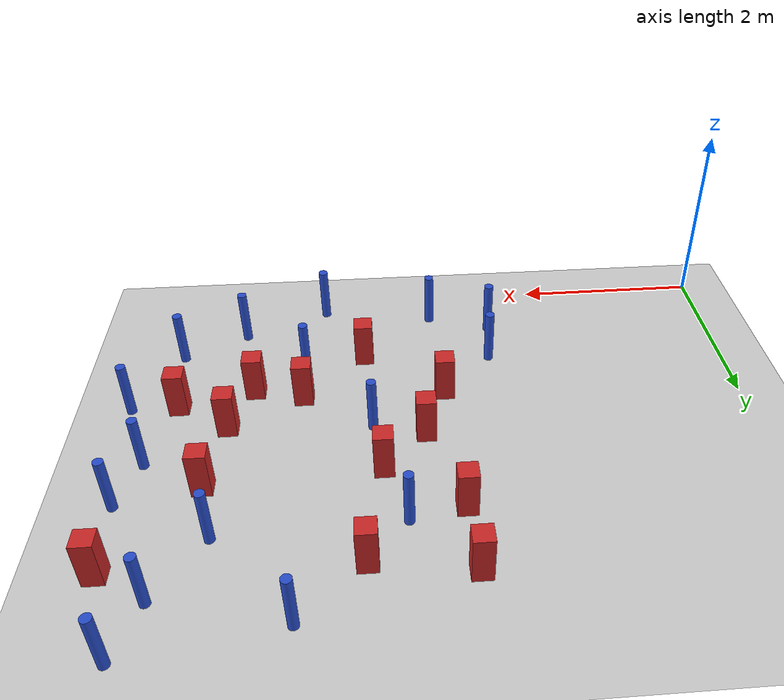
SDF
<sdf version="1.6">
 <world name="default">
  <model name="ground_plane">
   <static>1</static>
   <link name="link">
    <collision name="collision">
     <geometry><plane><normal>0 0 1</normal><size>100 100</size></plane></geometry>
     <surface><friction><ode><mu>100</mu><mu2>50</mu2></ode></friction></surface>
    </collision>
    <visual name="visual">
     <cast_shadows>0</cast_shadows>
     <geometry><plane><normal>0 0 1</normal><size>100 100</size></plane></geometry>
     <material>
      <ambient>1.0 1.0 1.0 1.0</ambient>
      <diffuse>0.8 0.8 0.8 1.0</diffuse>
      <specular>0.01 0.01 0.01 1.000000</specular>
     </material>
    </visual>
   </link>
  </model>
  <model name="square_post_obstacle2">
   <static>true</static>
   <pose>3.41418709103 2.44954421194 8.22691968438e-08 7.2212513382e-06 -7.54495500217e-07 2.29674213826e-05</pose>
   <link name="link">
    <pose>0 0 0.25 0 -0 0</pose>
    <inertial>
     <mass>100</mass>
     <inertia>
      <ixx>0.166667</ixx>
      <ixy>0</ixy>
      <ixz>0</ixz>
      <iyy>0.166667</iyy>
      <iyz>0</iyz>
      <izz>0.166667</izz>
     </inertia>
    </inertial>
    <collision name="collision"><geometry><box><size>.2 .2 .5</size></box></geometry></collision>
    <visual name="visual">
     <geometry><box><size>.2 .2 .5</size></box></geometry>
     <material>
      <script><name>Gazebo/Red</name><uri>file://media/materials/scripts/gazebo.material</uri></script>
     </material>
    </visual>
   </link>
  </model>
  <model name="square_post_obstacle8">
   <static>true</static>
   <pose>4.02171252029 1.15391218855 8.22691968438e-08 7.2212513382e-06 -7.54495500217e-07 2.29674213826e-05</pose>
   <link name="link">
    <pose>0 0 0.25 0 -0 0</pose>
    <inertial>
     <mass>100</mass>
     <inertia>
      <ixx>0.166667</ixx>
      <ixy>0</ixy>
      <ixz>0</ixz>
      <iyy>0.166667</iyy>
      <iyz>0</iyz>
      <izz>0.166667</izz>
     </inertia>
    </inertial>
    <collision name="collision"><geometry><box><size>.2 .2 .5</size></box></geometry></collision>
    <visual name="visual">
     <geometry><box><size>.2 .2 .5</size></box></geometry>
     <material>
      <script><name>Gazebo/Red</name><uri>file://media/materials/scripts/gazebo.material</uri></script>
     </material>
    </visual>
   </link>
  </model>
  <model name="square_post_obstacle11">
   <static>true</static>
   <pose>3.17586104604 1.81544225425 8.22691968438e-08 7.2212513382e-06 -7.54495500217e-07 2.29674213826e-05</pose>
   <link name="link">
    <pose>0 0 0.25 0 -0 0</pose>
    <inertial>
     <mass>100</mass>
     <inertia>
      <ixx>0.166667</ixx>
      <ixy>0</ixy>
      <ixz>0</ixz>
      <iyy>0.166667</iyy>
      <iyz>0</iyz>
      <izz>0.166667</izz>
     </inertia>
    </inertial>
    <collision name="collision"><geometry><box><size>.2 .2 .5</size></box></geometry></collision>
    <visual name="visual">
     <geometry><box><size>.2 .2 .5</size></box></geometry>
     <material>
      <script><name>Gazebo/Red</name><uri>file://media/materials/scripts/gazebo.material</uri></script>
     </material>
    </visual>
   </link>
  </model>
  <model name="pole_obstacle9">
   <static>true</static>
   <pose>3.24602878182 0.450953983572 2.88873142074e-08 -9.90536689151e-09 4.60219949006e-07 -1.20965994951e-07</pose>
   <link name="link">
    <pose>0 0 0.3 0 -0 0</pose>
    <inertial>
     <mass>1</mass>
     <inertia><ixx>0.145833</ixx><ixy>0</ixy><ixz>0</ixz><iyy>0.145833</iyy><iyz>0</iyz><izz>0.125</izz></inertia>
    </inertial>
    <collision name="collision">
     <geometry><cylinder><radius>0.05</radius><length>.6</length></cylinder></geometry>
    </collision>
    <visual name="visual">
     <geometry><cylinder><radius>0.05</radius><length>.6</length></cylinder></geometry>
     <material>
      <script><name>Gazebo/Blue</name><uri>file://media/materials/scripts/gazebo.material</uri></script>
     </material>
    </visual>
   </link>
  </model>
  <model name="square_post_obstacle19">
   <static>true</static>
   <pose>3.85054422246 2.91519529944 8.22691968438e-08 7.2212513382e-06 -7.54495500217e-07 2.29674213826e-05</pose>
   <link name="link">
    <pose>0 0 0.25 0 -0 0</pose>
    <inertial>
     <mass>100</mass>
     <inertia>
      <ixx>0.166667</ixx>
      <ixy>0</ixy>
      <ixz>0</ixz>
      <iyy>0.166667</iyy>
      <iyz>0</iyz>
      <izz>0.166667</izz>
     </inertia>
    </inertial>
    <collision name="collision"><geometry><box><size>.2 .2 .5</size></box></geometry></collision>
    <visual name="visual">
     <geometry><box><size>.2 .2 .5</size></box></geometry>
     <material>
      <script><name>Gazebo/Red</name><uri>file://media/materials/scripts/gazebo.material</uri></script>
     </material>
    </visual>
   </link>
  </model>
  <model name="pole_obstacle12">
   <static>true</static>
   <pose>5.87228479408 4.29156723029 2.88873142074e-08 -9.90536690842e-09 4.60219948965e-07 -1.20965994976e-07</pose>
   <link name="link">
    <pose>0 0 0.3 0 -0 0</pose>
    <inertial>
     <mass>1</mass>
     <inertia><ixx>0.145833</ixx><ixy>0</ixy><ixz>0</ixz><iyy>0.145833</iyy><iyz>0</iyz><izz>0.125</izz></inertia>
    </inertial>
    <collision name="collision">
     <geometry><cylinder><radius>0.05</radius><length>.6</length></cylinder></geometry>
    </collision>
    <visual name="visual">
     <geometry><cylinder><radius>0.05</radius><length>.6</length></cylinder></geometry>
     <material>
      <script><name>Gazebo/Blue</name><uri>file://media/materials/scripts/gazebo.material</uri></script>
     </material>
    </visual>
   </link>
  </model>
  <model name="pole_obstacle13">
   <static>true</static>
   <pose>6.3707468323 3.20079395214 2.88873142074e-08 -9.90536690245e-09 4.6021994898e-07 -1.20965994966e-07</pose>
   <link name="link">
    <pose>0 0 0.3 0 -0 0</pose>
    <inertial>
     <mass>1</mass>
     <inertia><ixx>0.145833</ixx><ixy>0</ixy><ixz>0</ixz><iyy>0.145833</iyy><iyz>0</iyz><izz>0.125</izz></inertia>
    </inertial>
    <collision name="collision">
     <geometry><cylinder><radius>0.05</radius><length>.6</length></cylinder></geometry>
    </collision>
    <visual name="visual">
     <geometry><cylinder><radius>0.05</radius><length>.6</length></cylinder></geometry>
     <material>
      <script><name>Gazebo/Blue</name><uri>file://media/materials/scripts/gazebo.material</uri></script>
     </material>
    </visual>
   </link>
  </model>
  <model name="pole_obstacle15">
   <static>true</static>
   <pose>6.03215885526 0.99990793642 2.88873142074e-08 -9.90536689329e-09 4.60219949001e-07 -1.20965994952e-07</pose>
   <link name="link">
    <pose>0 0 0.3 0 -0 0</pose>
    <inertial>
     <mass>1</mass>
     <inertia><ixx>0.145833</ixx><ixy>0</ixy><ixz>0</ixz><iyy>0.145833</iyy><iyz>0</iyz><izz>0.125</izz></inertia>
    </inertial>
    <collision name="collision">
     <geometry><cylinder><radius>0.05</radius><length>.6</length></cylinder></geometry>
    </collision>
    <visual name="visual">
     <geometry><cylinder><radius>0.05</radius><length>.6</length></cylinder></geometry>
     <material>
      <script><name>Gazebo/Blue</name><uri>file://media/materials/scripts/gazebo.material</uri></script>
     </material>
    </visual>
   </link>
  </model>
  <model name="pole_obstacle24">
   <static>true</static>
   <pose>2.63097724094 1.23968411557 2.88873142074e-08 -9.90536689395e-09 4.60219949e-07 -1.20965994953e-07</pose>
   <link name="link">
    <pose>0 0 0.3 0 -0 0</pose>
    <inertial>
     <mass>1</mass>
     <inertia><ixx>0.145833</ixx><ixy>0</ixy><ixz>0</ixz><iyy>0.145833</iyy><iyz>0</iyz><izz>0.125</izz></inertia>
    </inertial>
    <collision name="collision">
     <geometry><cylinder><radius>0.05</radius><length>.6</length></cylinder></geometry>
    </collision>
    <visual name="visual">
     <geometry><cylinder><radius>0.05</radius><length>.6</length></cylinder></geometry>
     <material>
      <script><name>Gazebo/Blue</name><uri>file://media/materials/scripts/gazebo.material</uri></script>
     </material>
    </visual>
   </link>
  </model>
  <model name="pole_obstacle25">
   <static>true</static>
   <pose>4.46883859706 0.244820934111 2.88873142074e-08 -9.90536689438e-09 4.60219948999e-07 -1.20965994956e-07</pose>
   <link name="link">
    <pose>0 0 0.3 0 -0 0</pose>
    <inertial>
     <mass>1</mass>
     <inertia><ixx>0.145833</ixx><ixy>0</ixy><ixz>0</ixz><iyy>0.145833</iyy><iyz>0</iyz><izz>0.125</izz></inertia>
    </inertial>
    <collision name="collision">
     <geometry><cylinder><radius>0.05</radius><length>.6</length></cylinder></geometry>
    </collision>
    <visual name="visual">
     <geometry><cylinder><radius>0.05</radius><length>.6</length></cylinder></geometry>
     <material>
      <script><name>Gazebo/Blue</name><uri>file://media/materials/scripts/gazebo.material</uri></script>
     </material>
    </visual>
   </link>
  </model>
  <model name="pole_obstacle64">
   <static>true</static>
   <pose>6.45954698307 1.85123220881 2.88873142074e-08 -9.90536689445e-09 4.60219948999e-07 -1.20965994956e-07</pose>
   <link name="link">
    <pose>0 0 0.3 0 -0 0</pose>
    <inertial>
     <mass>1</mass>
     <inertia><ixx>0.145833</ixx><ixy>0</ixy><ixz>0</ixz><iyy>0.145833</iyy><iyz>0</iyz><izz>0.125</izz></inertia>
    </inertial>
    <collision name="collision">
     <geometry><cylinder><radius>0.05</radius><length>.6</length></cylinder></geometry>
    </collision>
    <visual name="visual">
     <geometry><cylinder><radius>0.05</radius><length>.6</length></cylinder></geometry>
     <material>
      <script><name>Gazebo/Blue</name><uri>file://media/materials/scripts/gazebo.material</uri></script>
     </material>
    </visual>
   </link>
  </model>
  <model name="square_post_obstacle74">
   <static>true</static>
   <pose>6.33999220539 3.98039969989 8.22691968438e-08 7.2212513382e-06 -7.54495500217e-07 2.29674213826e-05</pose>
   <link name="link">
    <pose>0 0 0.25 0 -0 0</pose>
    <inertial>
     <mass>100</mass>
     <inertia>
      <ixx>0.166667</ixx>
      <ixy>0</ixy>
      <ixz>0</ixz>
      <iyy>0.166667</iyy>
      <iyz>0</iyz>
      <izz>0.166667</izz>
     </inertia>
    </inertial>
    <collision name="collision"><geometry><box><size>.2 .2 .5</size></box></geometry></collision>
    <visual name="visual">
     <geometry><box><size>.2 .2 .5</size></box></geometry>
     <material>
      <script><name>Gazebo/Red</name><uri>file://media/materials/scripts/gazebo.material</uri></script>
     </material>
    </visual>
   </link>
  </model>
  <model name="pole_obstacle74">
   <static>true</static>
   <pose>6.08176715338 4.83812957806 2.88873142074e-08 -9.90536690842e-09 4.60219948965e-07 -1.20965994976e-07</pose>
   <link name="link">
    <pose>0 0 0.3 0 -0 0</pose>
    <inertial>
     <mass>1</mass>
     <inertia><ixx>0.145833</ixx><ixy>0</ixy><ixz>0</ixz><iyy>0.145833</iyy><iyz>0</iyz><izz>0.125</izz></inertia>
    </inertial>
    <collision name="collision">
     <geometry><cylinder><radius>0.05</radius><length>.6</length></cylinder></geometry>
    </collision>
    <visual name="visual">
     <geometry><cylinder><radius>0.05</radius><length>.6</length></cylinder></geometry>
     <material>
      <script><name>Gazebo/Blue</name><uri>file://media/materials/scripts/gazebo.material</uri></script>
     </material>
    </visual>
   </link>
  </model>
  <model name="pole_obstacle76">
   <static>true</static>
   <pose>2.57444826513 0.685583261074 2.88873142074e-08 -9.90536689285e-09 4.60219949002e-07 -1.20965994953e-07</pose>
   <link name="link">
    <pose>0 0 0.3 0 -0 0</pose>
    <inertial>
     <mass>1</mass>
     <inertia><ixx>0.145833</ixx><ixy>0</ixy><ixz>0</ixz><iyy>0.145833</iyy><iyz>0</iyz><izz>0.125</izz></inertia>
    </inertial>
    <collision name="collision">
     <geometry><cylinder><radius>0.05</radius><length>.6</length></cylinder></geometry>
    </collision>
    <visual name="visual">
     <geometry><cylinder><radius>0.05</radius><length>.6</length></cylinder></geometry>
     <material>
      <script><name>Gazebo/Blue</name><uri>file://media/materials/scripts/gazebo.material</uri></script>
     </material>
    </visual>
   </link>
  </model>
  <model name="pole_obstacle87">
   <static>true</static>
   <pose>5.4259007002 3.65219915211 2.88873142074e-08 -9.90536690245e-09 4.6021994898e-07 -1.20965994966e-07</pose>
   <link name="link">
    <pose>0 0 0.3 0 -0 0</pose>
    <inertial>
     <mass>1</mass>
     <inertia><ixx>0.145833</ixx><ixy>0</ixy><ixz>0</ixz><iyy>0.145833</iyy><iyz>0</iyz><izz>0.125</izz></inertia>
    </inertial>
    <collision name="collision">
     <geometry><cylinder><radius>0.05</radius><length>.6</length></cylinder></geometry>
    </collision>
    <visual name="visual">
     <geometry><cylinder><radius>0.05</radius><length>.6</length></cylinder></geometry>
     <material>
      <script><name>Gazebo/Blue</name><uri>file://media/materials/scripts/gazebo.material</uri></script>
     </material>
    </visual>
   </link>
  </model>
  <model name="pole_obstacle119">
   <static>true</static>
   <pose>6.18392863633 2.67448558779 2.88873142074e-08 -9.90536690245e-09 4.6021994898e-07 -1.20965994966e-07</pose>
   <link name="link">
    <pose>0 0 0.3 0 -0 0</pose>
    <inertial>
     <mass>1</mass>
     <inertia><ixx>0.145833</ixx><ixy>0</ixy><ixz>0</ixz><iyy>0.145833</iyy><iyz>0</iyz><izz>0.125</izz></inertia>
    </inertial>
    <collision name="collision">
     <geometry><cylinder><radius>0.05</radius><length>.6</length></cylinder></geometry>
    </collision>
    <visual name="visual">
     <geometry><cylinder><radius>0.05</radius><length>.6</length></cylinder></geometry>
     <material>
      <script><name>Gazebo/Blue</name><uri>file://media/materials/scripts/gazebo.material</uri></script>
     </material>
    </visual>
   </link>
  </model>
  <model name="square_post_obstacle109">
   <static>true</static>
   <pose>3.10336097169 3.4605759816 8.22691968438e-08 7.2212513382e-06 -7.54495500217e-07 2.29674213826e-05</pose>
   <link name="link">
    <pose>0 0 0.25 0 -0 0</pose>
    <inertial>
     <mass>100</mass>
     <inertia>
      <ixx>0.166667</ixx>
      <ixy>0</ixy>
      <ixz>0</ixz>
      <iyy>0.166667</iyy>
      <iyz>0</iyz>
      <izz>0.166667</izz>
     </inertia>
    </inertial>
    <collision name="collision"><geometry><box><size>.2 .2 .5</size></box></geometry></collision>
    <visual name="visual">
     <geometry><box><size>.2 .2 .5</size></box></geometry>
     <material>
      <script><name>Gazebo/Red</name><uri>file://media/materials/scripts/gazebo.material</uri></script>
     </material>
    </visual>
   </link>
  </model>
  <model name="square_post_obstacle122">
   <static>true</static>
   <pose>3.05649690263 4.18964386135 8.22691968438e-08 7.2212513382e-06 -7.54495500217e-07 2.29674213826e-05</pose>
   <link name="link">
    <pose>0 0 0.25 0 -0 0</pose>
    <inertial>
     <mass>100</mass>
     <inertia>
      <ixx>0.166667</ixx>
      <ixy>0</ixy>
      <ixz>0</ixz>
      <iyy>0.166667</iyy>
      <iyz>0</iyz>
      <izz>0.166667</izz>
     </inertia>
    </inertial>
    <collision name="collision"><geometry><box><size>.2 .2 .5</size></box></geometry></collision>
    <visual name="visual">
     <geometry><box><size>.2 .2 .5</size></box></geometry>
     <material>
      <script><name>Gazebo/Red</name><uri>file://media/materials/scripts/gazebo.material</uri></script>
     </material>
    </visual>
   </link>
  </model>
  <model name="square_post_obstacle124">
   <static>true</static>
   <pose>5.5654410001 3.02153794793 8.22691968438e-08 7.2212513382e-06 -7.54495500217e-07 2.29674213826e-05</pose>
   <link name="link">
    <pose>0 0 0.25 0 -0 0</pose>
    <inertial>
     <mass>100</mass>
     <inertia>
      <ixx>0.166667</ixx>
      <ixy>0</ixy>
      <ixz>0</ixz>
      <iyy>0.166667</iyy>
      <iyz>0</iyz>
      <izz>0.166667</izz>
     </inertia>
    </inertial>
    <collision name="collision"><geometry><box><size>.2 .2 .5</size></box></geometry></collision>
    <visual name="visual">
     <geometry><box><size>.2 .2 .5</size></box></geometry>
     <material>
      <script><name>Gazebo/Red</name><uri>file://media/materials/scripts/gazebo.material</uri></script>
     </material>
    </visual>
   </link>
  </model>
  <model name="square_post_obstacle136">
   <static>true</static>
   <pose>4.66686483061 1.80032182734 8.22691968438e-08 7.2212513382e-06 -7.54495500217e-07 2.29674213826e-05</pose>
   <link name="link">
    <pose>0 0 0.25 0 -0 0</pose>
    <inertial>
     <mass>100</mass>
     <inertia>
      <ixx>0.166667</ixx>
      <ixy>0</ixy>
      <ixz>0</ixz>
      <iyy>0.166667</iyy>
      <iyz>0</iyz>
      <izz>0.166667</izz>
     </inertia>
    </inertial>
    <collision name="collision"><geometry><box><size>.2 .2 .5</size></box></geometry></collision>
    <visual name="visual">
     <geometry><box><size>.2 .2 .5</size></box></geometry>
     <material>
      <script><name>Gazebo/Red</name><uri>file://media/materials/scripts/gazebo.material</uri></script>
     </material>
    </visual>
   </link>
  </model>
  <model name="pole_obstacle149">
   <static>true</static>
   <pose>3.9464605849 2.2897985535 2.88873142074e-08 -9.90536690232e-09 4.6021994898e-07 -1.20965994968e-07</pose>
   <link name="link">
    <pose>0 0 0.3 0 -0 0</pose>
    <inertial>
     <mass>1</mass>
     <inertia><ixx>0.145833</ixx><ixy>0</ixy><ixz>0</ixz><iyy>0.145833</iyy><iyz>0</iyz><izz>0.125</izz></inertia>
    </inertial>
    <collision name="collision">
     <geometry><cylinder><radius>0.05</radius><length>.6</length></cylinder></geometry>
    </collision>
    <visual name="visual">
     <geometry><cylinder><radius>0.05</radius><length>.6</length></cylinder></geometry>
     <material>
      <script><name>Gazebo/Blue</name><uri>file://media/materials/scripts/gazebo.material</uri></script>
     </material>
    </visual>
   </link>
  </model>
  <model name="square_post_obstacle144">
   <static>true</static>
   <pose>4.02556832011 4.03264601311 8.22691968438e-08 7.22125133819e-06 -7.54495500217e-07 2.29674213826e-05</pose>
   <link name="link">
    <pose>0 0 0.25 0 -0 0</pose>
    <inertial>
     <mass>100</mass>
     <inertia>
      <ixx>0.166667</ixx>
      <ixy>0</ixy>
      <ixz>0</ixz>
      <iyy>0.166667</iyy>
      <iyz>0</iyz>
      <izz>0.166667</izz>
     </inertia>
    </inertial>
    <collision name="collision"><geometry><box><size>.2 .2 .5</size></box></geometry></collision>
    <visual name="visual">
     <geometry><box><size>.2 .2 .5</size></box></geometry>
     <material>
      <script><name>Gazebo/Red</name><uri>file://media/materials/scripts/gazebo.material</uri></script>
     </material>
    </visual>
   </link>
  </model>
  <model name="square_post_obstacle149">
   <static>true</static>
   <pose>5.41634141831 2.21868008483 8.22691968438e-08 7.2212513382e-06 -7.54495500217e-07 2.29674213826e-05</pose>
   <link name="link">
    <pose>0 0 0.25 0 -0 0</pose>
    <inertial>
     <mass>100</mass>
     <inertia>
      <ixx>0.166667</ixx>
      <ixy>0</ixy>
      <ixz>0</ixz>
      <iyy>0.166667</iyy>
      <iyz>0</iyz>
      <izz>0.166667</izz>
     </inertia>
    </inertial>
    <collision name="collision"><geometry><box><size>.2 .2 .5</size></box></geometry></collision>
    <visual name="visual">
     <geometry><box><size>.2 .2 .5</size></box></geometry>
     <material>
      <script><name>Gazebo/Red</name><uri>file://media/materials/scripts/gazebo.material</uri></script>
     </material>
    </visual>
   </link>
  </model>
  <model name="square_post_obstacle198">
   <static>true</static>
   <pose>5.95644622413 1.85828041781 8.22691968438e-08 7.2212513382e-06 -7.54495500217e-07 2.29674213826e-05</pose>
   <link name="link">
    <pose>0 0 0.25 0 -0 0</pose>
    <inertial>
     <mass>100</mass>
     <inertia>
      <ixx>0.166667</ixx>
      <ixy>0</ixy>
      <ixz>0</ixz>
      <iyy>0.166667</iyy>
      <iyz>0</iyz>
      <izz>0.166667</izz>
     </inertia>
    </inertial>
    <collision name="collision"><geometry><box><size>.2 .2 .5</size></box></geometry></collision>
    <visual name="visual">
     <geometry><box><size>.2 .2 .5</size></box></geometry>
     <material>
      <script><name>Gazebo/Red</name><uri>file://media/materials/scripts/gazebo.material</uri></script>
     </material>
    </visual>
   </link>
  </model>
  <model name="pole_obstacle192">
   <static>true</static>
   <pose>4.63505616414 4.60028844216 2.88873142074e-08 -9.90536690842e-09 4.60219948965e-07 -1.20965994976e-07</pose>
   <link name="link">
    <pose>0 0 0.3 0 -0 0</pose>
    <inertial>
     <mass>1</mass>
     <inertia><ixx>0.145833</ixx><ixy>0</ixy><ixz>0</ixz><iyy>0.145833</iyy><iyz>0</iyz><izz>0.125</izz></inertia>
    </inertial>
    <collision name="collision">
     <geometry><cylinder><radius>0.05</radius><length>.6</length></cylinder></geometry>
    </collision>
    <visual name="visual">
     <geometry><cylinder><radius>0.05</radius><length>.6</length></cylinder></geometry>
     <material>
      <script><name>Gazebo/Blue</name><uri>file://media/materials/scripts/gazebo.material</uri></script>
     </material>
    </visual>
   </link>
  </model>
  <model name="pole_obstacle197">
   <static>true</static>
   <pose>3.6416141335 3.57664966236 2.88873142074e-08 -9.90536690232e-09 4.6021994898e-07 -1.20965994968e-07</pose>
   <link name="link">
    <pose>0 0 0.3 0 -0 0</pose>
    <inertial>
     <mass>1</mass>
     <inertia><ixx>0.145833</ixx><ixy>0</ixy><ixz>0</ixz><iyy>0.145833</iyy><iyz>0</iyz><izz>0.125</izz></inertia>
    </inertial>
    <collision name="collision">
     <geometry><cylinder><radius>0.05</radius><length>.6</length></cylinder></geometry>
    </collision>
    <visual name="visual">
     <geometry><cylinder><radius>0.05</radius><length>.6</length></cylinder></geometry>
     <material>
      <script><name>Gazebo/Blue</name><uri>file://media/materials/scripts/gazebo.material</uri></script>
     </material>
    </visual>
   </link>
  </model>
  <model name="pole_obstacle199">
   <static>true</static>
   <pose>4.6617778326 1.28319413861 2.88873142074e-08 -9.90536689445e-09 4.60219948999e-07 -1.20965994956e-07</pose>
   <link name="link">
    <pose>0 0 0.3 0 -0 0</pose>
    <inertial>
     <mass>1</mass>
     <inertia><ixx>0.145833</ixx><ixy>0</ixy><ixz>0</ixz><iyy>0.145833</iyy><iyz>0</iyz><izz>0.125</izz></inertia>
    </inertial>
    <collision name="collision">
     <geometry><cylinder><radius>0.05</radius><length>.6</length></cylinder></geometry>
    </collision>
    <visual name="visual">
     <geometry><cylinder><radius>0.05</radius><length>.6</length></cylinder></geometry>
     <material>
      <script><name>Gazebo/Blue</name><uri>file://media/materials/scripts/gazebo.material</uri></script>
     </material>
    </visual>
   </link>
  </model>
  <model name="pole_obstacle200">
   <static>true</static>
   <pose>5.36936780648 0.643348356029 2.88873142074e-08 -9.90536689837e-09 4.60219948989e-07 -1.2096599496e-07</pose>
   <link name="link">
    <pose>0 0 0.3 0 -0 0</pose>
    <inertial>
     <mass>1</mass>
     <inertia><ixx>0.145833</ixx><ixy>0</ixy><ixz>0</ixz><iyy>0.145833</iyy><iyz>0</iyz><izz>0.125</izz></inertia>
    </inertial>
    <collision name="collision">
     <geometry><cylinder><radius>0.05</radius><length>.6</length></cylinder></geometry>
    </collision>
    <visual name="visual">
     <geometry><cylinder><radius>0.05</radius><length>.6</length></cylinder></geometry>
     <material>
      <script><name>Gazebo/Blue</name><uri>file://media/materials/scripts/gazebo.material</uri></script>
     </material>
    </visual>
   </link>
  </model>
  <model name="square_post_obstacle228">
   <static>true</static>
   <pose>5.18440003262 1.65928996466 8.22691968438e-08 7.2212513382e-06 -7.54495500217e-07 2.29674213826e-05</pose>
   <link name="link">
    <pose>0 0 0.25 0 -0 0</pose>
    <inertial>
     <mass>100</mass>
     <inertia>
      <ixx>0.166667</ixx>
      <ixy>0</ixy>
      <ixz>0</ixz>
      <iyy>0.166667</iyy>
      <iyz>0</iyz>
      <izz>0.166667</izz>
     </inertia>
    </inertial>
    <collision name="collision"><geometry><box><size>.2 .2 .5</size></box></geometry></collision>
    <visual name="visual">
     <geometry><box><size>.2 .2 .5</size></box></geometry>
     <material>
      <script><name>Gazebo/Red</name><uri>file://media/materials/scripts/gazebo.material</uri></script>
     </material>
    </visual>
   </link>
  </model>
 </world>
</sdf>
